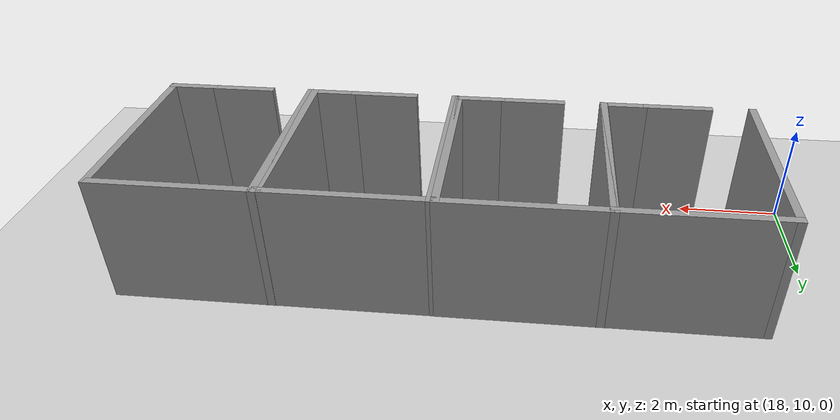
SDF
<sdf version="1.6">
 <world name="default">
  <model name="ground_plane">
   <static>1</static>
   <link name="link">
    <collision name="collision">
     <geometry><plane><normal>0 0 1</normal><size>100 100</size></plane></geometry>
     <surface><friction><ode><mu>100</mu><mu2>50</mu2></ode></friction></surface>
    </collision>
    <visual name="visual">
     <cast_shadows>0</cast_shadows>
     <geometry><plane><normal>0 0 1</normal><size>100 100</size></plane></geometry>
     <material>
      <script><uri>file://media/materials/scripts/gazebo.material</uri><name>Gazebo/Grey</name></script>
     </material>
    </visual>
   </link>
  </model>
  <model name="313-325">
   <link name="Wall_16">
    <pose>-1.44915 7.1e-05 0 0 0 -1.57088</pose>
    <visual name="Wall_16_Visual">
     <pose>0 0 1.25 0 -0 0</pose>
     <geometry><box><size>3.81 0.15 2.5</size></box></geometry>
     <material>
      <script><uri>file://media/materials/scripts/gazebo.material</uri><name>Gazebo/Grey</name></script>
      <ambient>1 1 1 1</ambient>
      <shader type="pixel"/>
     </material>
     <meta><layer>0</layer></meta>
    </visual>
    <collision name="Wall_16_Collision">
     <pose>0 0 1.25 0 -0 0</pose>
     <geometry><box><size>3.81 0.15 2.5</size></box></geometry>
     <surface>
      <friction>
       <ode><mu>1</mu><mu2>1</mu2><fdir1>0 0 0</fdir1><slip1>0</slip1><slip2>0</slip2></ode>
       <torsional>
        <coefficient>1</coefficient>
        <patch_radius>0</patch_radius>
        <surface_radius>0</surface_radius>
        <use_patch_radius>1</use_patch_radius>
        <ode><slip>0</slip></ode>
       </torsional>
      </friction>
      <bounce><restitution_coefficient>0</restitution_coefficient><threshold>1e+06</threshold></bounce>
      <contact>
       <collide_without_contact>0</collide_without_contact>
       <collide_without_contact_bitmask>1</collide_without_contact_bitmask>
       <collide_bitmask>1</collide_bitmask>
       <ode>
        <soft_cfm>0</soft_cfm>
        <soft_erp>0.2</soft_erp>
        <kp>1e+13</kp>
        <kd>1</kd>
        <max_vel>0.01</max_vel>
        <min_depth>0</min_depth>
       </ode>
       <bullet>
        <split_impulse>1</split_impulse>
        <split_impulse_penetration_threshold>-0.01</split_impulse_penetration_threshold>
        <soft_cfm>0</soft_cfm>
        <soft_erp>0.2</soft_erp>
        <kp>1e+13</kp>
        <kd>1</kd>
       </bullet>
      </contact>
     </surface>
    </collision>
   </link>
   <link name="Wall_18">
    <pose>1.449 -6.1e-05 0 0 -0 1.5708</pose>
    <visual name="Wall_18_Visual">
     <pose>0 0 1.25 0 -0 0</pose>
     <geometry><box><size>3.80974 0.15 2.5</size></box></geometry>
     <material>
      <script><uri>file://media/materials/scripts/gazebo.material</uri><name>Gazebo/Grey</name></script>
      <ambient>1 1 1 1</ambient>
      <shader type="pixel"/>
     </material>
     <meta><layer>0</layer></meta>
    </visual>
    <collision name="Wall_18_Collision">
     <pose>0 0 1.25 0 -0 0</pose>
     <geometry><box><size>3.80974 0.15 2.5</size></box></geometry>
     <surface>
      <friction>
       <ode><mu>1</mu><mu2>1</mu2><fdir1>0 0 0</fdir1><slip1>0</slip1><slip2>0</slip2></ode>
       <torsional>
        <coefficient>1</coefficient>
        <patch_radius>0</patch_radius>
        <surface_radius>0</surface_radius>
        <use_patch_radius>1</use_patch_radius>
        <ode><slip>0</slip></ode>
       </torsional>
      </friction>
      <bounce><restitution_coefficient>0</restitution_coefficient><threshold>1e+06</threshold></bounce>
      <contact>
       <collide_without_contact>0</collide_without_contact>
       <collide_without_contact_bitmask>1</collide_without_contact_bitmask>
       <collide_bitmask>1</collide_bitmask>
       <ode>
        <soft_cfm>0</soft_cfm>
        <soft_erp>0.2</soft_erp>
        <kp>1e+13</kp>
        <kd>1</kd>
        <max_vel>0.01</max_vel>
        <min_depth>0</min_depth>
       </ode>
       <bullet>
        <split_impulse>1</split_impulse>
        <split_impulse_penetration_threshold>-0.01</split_impulse_penetration_threshold>
        <soft_cfm>0</soft_cfm>
        <soft_erp>0.2</soft_erp>
        <kp>1e+13</kp>
        <kd>1</kd>
       </bullet>
      </contact>
     </surface>
    </collision>
   </link>
   <link name="Wall_19">
    <pose>2e-06 1.82994 0 0 -0 3.14159</pose>
    <visual name="Wall_19_Visual">
     <pose>0 0 1.25 0 -0 0</pose>
     <geometry><box><size>3.04862 0.15 2.5</size></box></geometry>
     <material>
      <script><uri>file://media/materials/scripts/gazebo.material</uri><name>Gazebo/Grey</name></script>
      <ambient>1 1 1 1</ambient>
      <shader type="pixel"/>
     </material>
     <meta><layer>0</layer></meta>
    </visual>
    <collision name="Wall_19_Collision">
     <pose>0 0 1.25 0 -0 0</pose>
     <geometry><box><size>3.04862 0.15 2.5</size></box></geometry>
     <surface>
      <friction>
       <ode><mu>1</mu><mu2>1</mu2><fdir1>0 0 0</fdir1><slip1>0</slip1><slip2>0</slip2></ode>
       <torsional>
        <coefficient>1</coefficient>
        <patch_radius>0</patch_radius>
        <surface_radius>0</surface_radius>
        <use_patch_radius>1</use_patch_radius>
        <ode><slip>0</slip></ode>
       </torsional>
      </friction>
      <bounce><restitution_coefficient>0</restitution_coefficient><threshold>1e+06</threshold></bounce>
      <contact>
       <collide_without_contact>0</collide_without_contact>
       <collide_without_contact_bitmask>1</collide_without_contact_bitmask>
       <collide_bitmask>1</collide_bitmask>
       <ode>
        <soft_cfm>0</soft_cfm>
        <soft_erp>0.2</soft_erp>
        <kp>1e+13</kp>
        <kd>1</kd>
        <max_vel>0.01</max_vel>
        <min_depth>0</min_depth>
       </ode>
       <bullet>
        <split_impulse>1</split_impulse>
        <split_impulse_penetration_threshold>-0.01</split_impulse_penetration_threshold>
        <soft_cfm>0</soft_cfm>
        <soft_erp>0.2</soft_erp>
        <kp>1e+13</kp>
        <kd>1</kd>
       </bullet>
      </contact>
     </surface>
    </collision>
   </link>
   <link name="Wall_22">
    <pose>-0.000153 -1.82993 0 0 0 -0.00022</pose>
    <visual name="Wall_22_Visual">
     <pose>0 0 1.25 0 -0 0</pose>
     <geometry><box><size>1.34831 0.15 2.5</size></box></geometry>
     <material>
      <script><uri>file://media/materials/scripts/gazebo.material</uri><name>Gazebo/Grey</name></script>
      <ambient>1 1 1 1</ambient>
      <shader type="pixel"/>
     </material>
     <meta><layer>0</layer></meta>
    </visual>
    <collision name="Wall_22_Collision">
     <pose>0 0 1.25 0 -0 0</pose>
     <geometry><box><size>1.34831 0.15 2.5</size></box></geometry>
     <surface>
      <friction>
       <ode><mu>1</mu><mu2>1</mu2><fdir1>0 0 0</fdir1><slip1>0</slip1><slip2>0</slip2></ode>
       <torsional>
        <coefficient>1</coefficient>
        <patch_radius>0</patch_radius>
        <surface_radius>0</surface_radius>
        <use_patch_radius>1</use_patch_radius>
        <ode><slip>0</slip></ode>
       </torsional>
      </friction>
      <bounce><restitution_coefficient>0</restitution_coefficient><threshold>1e+06</threshold></bounce>
      <contact>
       <collide_without_contact>0</collide_without_contact>
       <collide_without_contact_bitmask>1</collide_without_contact_bitmask>
       <collide_bitmask>1</collide_bitmask>
       <ode>
        <soft_cfm>0</soft_cfm>
        <soft_erp>0.2</soft_erp>
        <kp>1e+13</kp>
        <kd>1</kd>
        <max_vel>0.01</max_vel>
        <min_depth>0</min_depth>
       </ode>
       <bullet>
        <split_impulse>1</split_impulse>
        <split_impulse_penetration_threshold>-0.01</split_impulse_penetration_threshold>
        <soft_cfm>0</soft_cfm>
        <soft_erp>0.2</soft_erp>
        <kp>1e+13</kp>
        <kd>1</kd>
       </bullet>
      </contact>
     </surface>
    </collision>
   </link>
   <link name="Wall_23">
    <pose>1.024 -1.83006 0 0 -0 0</pose>
    <visual name="Wall_23_Visual">
     <pose>0 0 1.25 0 -0 0</pose>
     <geometry><box><size>1 0.15 2.5</size></box></geometry>
     <material>
      <script><uri>file://media/materials/scripts/gazebo.material</uri><name>Gazebo/Grey</name></script>
      <ambient>1 1 1 1</ambient>
      <shader type="pixel"/>
     </material>
     <meta><layer>0</layer></meta>
    </visual>
    <collision name="Wall_23_Collision">
     <pose>0 0 1.25 0 -0 0</pose>
     <geometry><box><size>1 0.15 2.5</size></box></geometry>
     <surface>
      <friction>
       <ode><mu>1</mu><mu2>1</mu2><fdir1>0 0 0</fdir1><slip1>0</slip1><slip2>0</slip2></ode>
       <torsional>
        <coefficient>1</coefficient>
        <patch_radius>0</patch_radius>
        <surface_radius>0</surface_radius>
        <use_patch_radius>1</use_patch_radius>
        <ode><slip>0</slip></ode>
       </torsional>
      </friction>
      <bounce><restitution_coefficient>0</restitution_coefficient><threshold>1e+06</threshold></bounce>
      <contact>
       <collide_without_contact>0</collide_without_contact>
       <collide_without_contact_bitmask>1</collide_without_contact_bitmask>
       <collide_bitmask>1</collide_bitmask>
       <ode>
        <soft_cfm>0</soft_cfm>
        <soft_erp>0.2</soft_erp>
        <kp>1e+13</kp>
        <kd>1</kd>
        <max_vel>0.01</max_vel>
        <min_depth>0</min_depth>
       </ode>
       <bullet>
        <split_impulse>1</split_impulse>
        <split_impulse_penetration_threshold>-0.01</split_impulse_penetration_threshold>
        <soft_cfm>0</soft_cfm>
        <soft_erp>0.2</soft_erp>
        <kp>1e+13</kp>
        <kd>1</kd>
       </bullet>
      </contact>
     </surface>
    </collision>
   </link>
   <static>1</static>
   <pose>29.269 11.9553 0 0 -0 0</pose>
  </model>
  <model name="313-325_0">
   <link name="Wall_16">
    <pose>-1.44915 7.1e-05 0 0 0 -1.57088</pose>
    <visual name="Wall_16_Visual">
     <pose>0 0 1.25 0 -0 0</pose>
     <geometry><box><size>3.81 0.15 2.5</size></box></geometry>
     <material>
      <script><uri>file://media/materials/scripts/gazebo.material</uri><name>Gazebo/Grey</name></script>
      <ambient>1 1 1 1</ambient>
      <shader type="pixel"/>
     </material>
     <meta><layer>0</layer></meta>
    </visual>
    <collision name="Wall_16_Collision">
     <pose>0 0 1.25 0 -0 0</pose>
     <geometry><box><size>3.81 0.15 2.5</size></box></geometry>
     <surface>
      <friction>
       <ode><mu>1</mu><mu2>1</mu2><fdir1>0 0 0</fdir1><slip1>0</slip1><slip2>0</slip2></ode>
       <torsional>
        <coefficient>1</coefficient>
        <patch_radius>0</patch_radius>
        <surface_radius>0</surface_radius>
        <use_patch_radius>1</use_patch_radius>
        <ode><slip>0</slip></ode>
       </torsional>
      </friction>
      <bounce><restitution_coefficient>0</restitution_coefficient><threshold>1e+06</threshold></bounce>
      <contact>
       <collide_without_contact>0</collide_without_contact>
       <collide_without_contact_bitmask>1</collide_without_contact_bitmask>
       <collide_bitmask>1</collide_bitmask>
       <ode>
        <soft_cfm>0</soft_cfm>
        <soft_erp>0.2</soft_erp>
        <kp>1e+13</kp>
        <kd>1</kd>
        <max_vel>0.01</max_vel>
        <min_depth>0</min_depth>
       </ode>
       <bullet>
        <split_impulse>1</split_impulse>
        <split_impulse_penetration_threshold>-0.01</split_impulse_penetration_threshold>
        <soft_cfm>0</soft_cfm>
        <soft_erp>0.2</soft_erp>
        <kp>1e+13</kp>
        <kd>1</kd>
       </bullet>
      </contact>
     </surface>
    </collision>
   </link>
   <link name="Wall_18">
    <pose>1.449 -6.1e-05 0 0 -0 1.5708</pose>
    <visual name="Wall_18_Visual">
     <pose>0 0 1.25 0 -0 0</pose>
     <geometry><box><size>3.80974 0.15 2.5</size></box></geometry>
     <material>
      <script><uri>file://media/materials/scripts/gazebo.material</uri><name>Gazebo/Grey</name></script>
      <ambient>1 1 1 1</ambient>
      <shader type="pixel"/>
     </material>
     <meta><layer>0</layer></meta>
    </visual>
    <collision name="Wall_18_Collision">
     <pose>0 0 1.25 0 -0 0</pose>
     <geometry><box><size>3.80974 0.15 2.5</size></box></geometry>
     <surface>
      <friction>
       <ode><mu>1</mu><mu2>1</mu2><fdir1>0 0 0</fdir1><slip1>0</slip1><slip2>0</slip2></ode>
       <torsional>
        <coefficient>1</coefficient>
        <patch_radius>0</patch_radius>
        <surface_radius>0</surface_radius>
        <use_patch_radius>1</use_patch_radius>
        <ode><slip>0</slip></ode>
       </torsional>
      </friction>
      <bounce><restitution_coefficient>0</restitution_coefficient><threshold>1e+06</threshold></bounce>
      <contact>
       <collide_without_contact>0</collide_without_contact>
       <collide_without_contact_bitmask>1</collide_without_contact_bitmask>
       <collide_bitmask>1</collide_bitmask>
       <ode>
        <soft_cfm>0</soft_cfm>
        <soft_erp>0.2</soft_erp>
        <kp>1e+13</kp>
        <kd>1</kd>
        <max_vel>0.01</max_vel>
        <min_depth>0</min_depth>
       </ode>
       <bullet>
        <split_impulse>1</split_impulse>
        <split_impulse_penetration_threshold>-0.01</split_impulse_penetration_threshold>
        <soft_cfm>0</soft_cfm>
        <soft_erp>0.2</soft_erp>
        <kp>1e+13</kp>
        <kd>1</kd>
       </bullet>
      </contact>
     </surface>
    </collision>
   </link>
   <link name="Wall_19">
    <pose>2e-06 1.82994 0 0 -0 3.14159</pose>
    <visual name="Wall_19_Visual">
     <pose>0 0 1.25 0 -0 0</pose>
     <geometry><box><size>3.04862 0.15 2.5</size></box></geometry>
     <material>
      <script><uri>file://media/materials/scripts/gazebo.material</uri><name>Gazebo/Grey</name></script>
      <ambient>1 1 1 1</ambient>
      <shader type="pixel"/>
     </material>
     <meta><layer>0</layer></meta>
    </visual>
    <collision name="Wall_19_Collision">
     <pose>0 0 1.25 0 -0 0</pose>
     <geometry><box><size>3.04862 0.15 2.5</size></box></geometry>
     <surface>
      <friction>
       <ode><mu>1</mu><mu2>1</mu2><fdir1>0 0 0</fdir1><slip1>0</slip1><slip2>0</slip2></ode>
       <torsional>
        <coefficient>1</coefficient>
        <patch_radius>0</patch_radius>
        <surface_radius>0</surface_radius>
        <use_patch_radius>1</use_patch_radius>
        <ode><slip>0</slip></ode>
       </torsional>
      </friction>
      <bounce><restitution_coefficient>0</restitution_coefficient><threshold>1e+06</threshold></bounce>
      <contact>
       <collide_without_contact>0</collide_without_contact>
       <collide_without_contact_bitmask>1</collide_without_contact_bitmask>
       <collide_bitmask>1</collide_bitmask>
       <ode>
        <soft_cfm>0</soft_cfm>
        <soft_erp>0.2</soft_erp>
        <kp>1e+13</kp>
        <kd>1</kd>
        <max_vel>0.01</max_vel>
        <min_depth>0</min_depth>
       </ode>
       <bullet>
        <split_impulse>1</split_impulse>
        <split_impulse_penetration_threshold>-0.01</split_impulse_penetration_threshold>
        <soft_cfm>0</soft_cfm>
        <soft_erp>0.2</soft_erp>
        <kp>1e+13</kp>
        <kd>1</kd>
       </bullet>
      </contact>
     </surface>
    </collision>
   </link>
   <link name="Wall_22">
    <pose>-0.000153 -1.82993 0 0 0 -0.00022</pose>
    <visual name="Wall_22_Visual">
     <pose>0 0 1.25 0 -0 0</pose>
     <geometry><box><size>1.34831 0.15 2.5</size></box></geometry>
     <material>
      <script><uri>file://media/materials/scripts/gazebo.material</uri><name>Gazebo/Grey</name></script>
      <ambient>1 1 1 1</ambient>
      <shader type="pixel"/>
     </material>
     <meta><layer>0</layer></meta>
    </visual>
    <collision name="Wall_22_Collision">
     <pose>0 0 1.25 0 -0 0</pose>
     <geometry><box><size>1.34831 0.15 2.5</size></box></geometry>
     <surface>
      <friction>
       <ode><mu>1</mu><mu2>1</mu2><fdir1>0 0 0</fdir1><slip1>0</slip1><slip2>0</slip2></ode>
       <torsional>
        <coefficient>1</coefficient>
        <patch_radius>0</patch_radius>
        <surface_radius>0</surface_radius>
        <use_patch_radius>1</use_patch_radius>
        <ode><slip>0</slip></ode>
       </torsional>
      </friction>
      <bounce><restitution_coefficient>0</restitution_coefficient><threshold>1e+06</threshold></bounce>
      <contact>
       <collide_without_contact>0</collide_without_contact>
       <collide_without_contact_bitmask>1</collide_without_contact_bitmask>
       <collide_bitmask>1</collide_bitmask>
       <ode>
        <soft_cfm>0</soft_cfm>
        <soft_erp>0.2</soft_erp>
        <kp>1e+13</kp>
        <kd>1</kd>
        <max_vel>0.01</max_vel>
        <min_depth>0</min_depth>
       </ode>
       <bullet>
        <split_impulse>1</split_impulse>
        <split_impulse_penetration_threshold>-0.01</split_impulse_penetration_threshold>
        <soft_cfm>0</soft_cfm>
        <soft_erp>0.2</soft_erp>
        <kp>1e+13</kp>
        <kd>1</kd>
       </bullet>
      </contact>
     </surface>
    </collision>
   </link>
   <link name="Wall_23">
    <pose>1.024 -1.83006 0 0 -0 0</pose>
    <visual name="Wall_23_Visual">
     <pose>0 0 1.25 0 -0 0</pose>
     <geometry><box><size>1 0.15 2.5</size></box></geometry>
     <material>
      <script><uri>file://media/materials/scripts/gazebo.material</uri><name>Gazebo/Grey</name></script>
      <ambient>1 1 1 1</ambient>
      <shader type="pixel"/>
     </material>
     <meta><layer>0</layer></meta>
    </visual>
    <collision name="Wall_23_Collision">
     <pose>0 0 1.25 0 -0 0</pose>
     <geometry><box><size>1 0.15 2.5</size></box></geometry>
     <surface>
      <friction>
       <ode><mu>1</mu><mu2>1</mu2><fdir1>0 0 0</fdir1><slip1>0</slip1><slip2>0</slip2></ode>
       <torsional>
        <coefficient>1</coefficient>
        <patch_radius>0</patch_radius>
        <surface_radius>0</surface_radius>
        <use_patch_radius>1</use_patch_radius>
        <ode><slip>0</slip></ode>
       </torsional>
      </friction>
      <bounce><restitution_coefficient>0</restitution_coefficient><threshold>1e+06</threshold></bounce>
      <contact>
       <collide_without_contact>0</collide_without_contact>
       <collide_without_contact_bitmask>1</collide_without_contact_bitmask>
       <collide_bitmask>1</collide_bitmask>
       <ode>
        <soft_cfm>0</soft_cfm>
        <soft_erp>0.2</soft_erp>
        <kp>1e+13</kp>
        <kd>1</kd>
        <max_vel>0.01</max_vel>
        <min_depth>0</min_depth>
       </ode>
       <bullet>
        <split_impulse>1</split_impulse>
        <split_impulse_penetration_threshold>-0.01</split_impulse_penetration_threshold>
        <soft_cfm>0</soft_cfm>
        <soft_erp>0.2</soft_erp>
        <kp>1e+13</kp>
        <kd>1</kd>
       </bullet>
      </contact>
     </surface>
    </collision>
   </link>
   <static>1</static>
   <pose>26.2881 11.95 0 0 -0 0</pose>
  </model>
  <model name="313-325_1">
   <link name="Wall_16">
    <pose>-1.44915 7.1e-05 0 0 0 -1.57088</pose>
    <visual name="Wall_16_Visual">
     <pose>0 0 1.25 0 -0 0</pose>
     <geometry><box><size>3.81 0.15 2.5</size></box></geometry>
     <material>
      <script><uri>file://media/materials/scripts/gazebo.material</uri><name>Gazebo/Grey</name></script>
      <ambient>1 1 1 1</ambient>
      <shader type="pixel"/>
     </material>
     <meta><layer>0</layer></meta>
    </visual>
    <collision name="Wall_16_Collision">
     <pose>0 0 1.25 0 -0 0</pose>
     <geometry><box><size>3.81 0.15 2.5</size></box></geometry>
     <surface>
      <friction>
       <ode><mu>1</mu><mu2>1</mu2><fdir1>0 0 0</fdir1><slip1>0</slip1><slip2>0</slip2></ode>
       <torsional>
        <coefficient>1</coefficient>
        <patch_radius>0</patch_radius>
        <surface_radius>0</surface_radius>
        <use_patch_radius>1</use_patch_radius>
        <ode><slip>0</slip></ode>
       </torsional>
      </friction>
      <bounce><restitution_coefficient>0</restitution_coefficient><threshold>1e+06</threshold></bounce>
      <contact>
       <collide_without_contact>0</collide_without_contact>
       <collide_without_contact_bitmask>1</collide_without_contact_bitmask>
       <collide_bitmask>1</collide_bitmask>
       <ode>
        <soft_cfm>0</soft_cfm>
        <soft_erp>0.2</soft_erp>
        <kp>1e+13</kp>
        <kd>1</kd>
        <max_vel>0.01</max_vel>
        <min_depth>0</min_depth>
       </ode>
       <bullet>
        <split_impulse>1</split_impulse>
        <split_impulse_penetration_threshold>-0.01</split_impulse_penetration_threshold>
        <soft_cfm>0</soft_cfm>
        <soft_erp>0.2</soft_erp>
        <kp>1e+13</kp>
        <kd>1</kd>
       </bullet>
      </contact>
     </surface>
    </collision>
   </link>
   <link name="Wall_18">
    <pose>1.449 -6.1e-05 0 0 -0 1.5708</pose>
    <visual name="Wall_18_Visual">
     <pose>0 0 1.25 0 -0 0</pose>
     <geometry><box><size>3.80974 0.15 2.5</size></box></geometry>
     <material>
      <script><uri>file://media/materials/scripts/gazebo.material</uri><name>Gazebo/Grey</name></script>
      <ambient>1 1 1 1</ambient>
      <shader type="pixel"/>
     </material>
     <meta><layer>0</layer></meta>
    </visual>
    <collision name="Wall_18_Collision">
     <pose>0 0 1.25 0 -0 0</pose>
     <geometry><box><size>3.80974 0.15 2.5</size></box></geometry>
     <surface>
      <friction>
       <ode><mu>1</mu><mu2>1</mu2><fdir1>0 0 0</fdir1><slip1>0</slip1><slip2>0</slip2></ode>
       <torsional>
        <coefficient>1</coefficient>
        <patch_radius>0</patch_radius>
        <surface_radius>0</surface_radius>
        <use_patch_radius>1</use_patch_radius>
        <ode><slip>0</slip></ode>
       </torsional>
      </friction>
      <bounce><restitution_coefficient>0</restitution_coefficient><threshold>1e+06</threshold></bounce>
      <contact>
       <collide_without_contact>0</collide_without_contact>
       <collide_without_contact_bitmask>1</collide_without_contact_bitmask>
       <collide_bitmask>1</collide_bitmask>
       <ode>
        <soft_cfm>0</soft_cfm>
        <soft_erp>0.2</soft_erp>
        <kp>1e+13</kp>
        <kd>1</kd>
        <max_vel>0.01</max_vel>
        <min_depth>0</min_depth>
       </ode>
       <bullet>
        <split_impulse>1</split_impulse>
        <split_impulse_penetration_threshold>-0.01</split_impulse_penetration_threshold>
        <soft_cfm>0</soft_cfm>
        <soft_erp>0.2</soft_erp>
        <kp>1e+13</kp>
        <kd>1</kd>
       </bullet>
      </contact>
     </surface>
    </collision>
   </link>
   <link name="Wall_19">
    <pose>2e-06 1.82994 0 0 -0 3.14159</pose>
    <visual name="Wall_19_Visual">
     <pose>0 0 1.25 0 -0 0</pose>
     <geometry><box><size>3.04862 0.15 2.5</size></box></geometry>
     <material>
      <script><uri>file://media/materials/scripts/gazebo.material</uri><name>Gazebo/Grey</name></script>
      <ambient>1 1 1 1</ambient>
      <shader type="pixel"/>
     </material>
     <meta><layer>0</layer></meta>
    </visual>
    <collision name="Wall_19_Collision">
     <pose>0 0 1.25 0 -0 0</pose>
     <geometry><box><size>3.04862 0.15 2.5</size></box></geometry>
     <surface>
      <friction>
       <ode><mu>1</mu><mu2>1</mu2><fdir1>0 0 0</fdir1><slip1>0</slip1><slip2>0</slip2></ode>
       <torsional>
        <coefficient>1</coefficient>
        <patch_radius>0</patch_radius>
        <surface_radius>0</surface_radius>
        <use_patch_radius>1</use_patch_radius>
        <ode><slip>0</slip></ode>
       </torsional>
      </friction>
      <bounce><restitution_coefficient>0</restitution_coefficient><threshold>1e+06</threshold></bounce>
      <contact>
       <collide_without_contact>0</collide_without_contact>
       <collide_without_contact_bitmask>1</collide_without_contact_bitmask>
       <collide_bitmask>1</collide_bitmask>
       <ode>
        <soft_cfm>0</soft_cfm>
        <soft_erp>0.2</soft_erp>
        <kp>1e+13</kp>
        <kd>1</kd>
        <max_vel>0.01</max_vel>
        <min_depth>0</min_depth>
       </ode>
       <bullet>
        <split_impulse>1</split_impulse>
        <split_impulse_penetration_threshold>-0.01</split_impulse_penetration_threshold>
        <soft_cfm>0</soft_cfm>
        <soft_erp>0.2</soft_erp>
        <kp>1e+13</kp>
        <kd>1</kd>
       </bullet>
      </contact>
     </surface>
    </collision>
   </link>
   <link name="Wall_22">
    <pose>-0.000153 -1.82993 0 0 0 -0.00022</pose>
    <visual name="Wall_22_Visual">
     <pose>0 0 1.25 0 -0 0</pose>
     <geometry><box><size>1.34831 0.15 2.5</size></box></geometry>
     <material>
      <script><uri>file://media/materials/scripts/gazebo.material</uri><name>Gazebo/Grey</name></script>
      <ambient>1 1 1 1</ambient>
      <shader type="pixel"/>
     </material>
     <meta><layer>0</layer></meta>
    </visual>
    <collision name="Wall_22_Collision">
     <pose>0 0 1.25 0 -0 0</pose>
     <geometry><box><size>1.34831 0.15 2.5</size></box></geometry>
     <surface>
      <friction>
       <ode><mu>1</mu><mu2>1</mu2><fdir1>0 0 0</fdir1><slip1>0</slip1><slip2>0</slip2></ode>
       <torsional>
        <coefficient>1</coefficient>
        <patch_radius>0</patch_radius>
        <surface_radius>0</surface_radius>
        <use_patch_radius>1</use_patch_radius>
        <ode><slip>0</slip></ode>
       </torsional>
      </friction>
      <bounce><restitution_coefficient>0</restitution_coefficient><threshold>1e+06</threshold></bounce>
      <contact>
       <collide_without_contact>0</collide_without_contact>
       <collide_without_contact_bitmask>1</collide_without_contact_bitmask>
       <collide_bitmask>1</collide_bitmask>
       <ode>
        <soft_cfm>0</soft_cfm>
        <soft_erp>0.2</soft_erp>
        <kp>1e+13</kp>
        <kd>1</kd>
        <max_vel>0.01</max_vel>
        <min_depth>0</min_depth>
       </ode>
       <bullet>
        <split_impulse>1</split_impulse>
        <split_impulse_penetration_threshold>-0.01</split_impulse_penetration_threshold>
        <soft_cfm>0</soft_cfm>
        <soft_erp>0.2</soft_erp>
        <kp>1e+13</kp>
        <kd>1</kd>
       </bullet>
      </contact>
     </surface>
    </collision>
   </link>
   <link name="Wall_23">
    <pose>1.024 -1.83006 0 0 -0 0</pose>
    <visual name="Wall_23_Visual">
     <pose>0 0 1.25 0 -0 0</pose>
     <geometry><box><size>1 0.15 2.5</size></box></geometry>
     <material>
      <script><uri>file://media/materials/scripts/gazebo.material</uri><name>Gazebo/Grey</name></script>
      <ambient>1 1 1 1</ambient>
      <shader type="pixel"/>
     </material>
     <meta><layer>0</layer></meta>
    </visual>
    <collision name="Wall_23_Collision">
     <pose>0 0 1.25 0 -0 0</pose>
     <geometry><box><size>1 0.15 2.5</size></box></geometry>
     <surface>
      <friction>
       <ode><mu>1</mu><mu2>1</mu2><fdir1>0 0 0</fdir1><slip1>0</slip1><slip2>0</slip2></ode>
       <torsional>
        <coefficient>1</coefficient>
        <patch_radius>0</patch_radius>
        <surface_radius>0</surface_radius>
        <use_patch_radius>1</use_patch_radius>
        <ode><slip>0</slip></ode>
       </torsional>
      </friction>
      <bounce><restitution_coefficient>0</restitution_coefficient><threshold>1e+06</threshold></bounce>
      <contact>
       <collide_without_contact>0</collide_without_contact>
       <collide_without_contact_bitmask>1</collide_without_contact_bitmask>
       <collide_bitmask>1</collide_bitmask>
       <ode>
        <soft_cfm>0</soft_cfm>
        <soft_erp>0.2</soft_erp>
        <kp>1e+13</kp>
        <kd>1</kd>
        <max_vel>0.01</max_vel>
        <min_depth>0</min_depth>
       </ode>
       <bullet>
        <split_impulse>1</split_impulse>
        <split_impulse_penetration_threshold>-0.01</split_impulse_penetration_threshold>
        <soft_cfm>0</soft_cfm>
        <soft_erp>0.2</soft_erp>
        <kp>1e+13</kp>
        <kd>1</kd>
       </bullet>
      </contact>
     </surface>
    </collision>
   </link>
   <static>1</static>
   <pose>23.3136 11.9552 0 0 -0 0</pose>
  </model>
  <model name="313-325_2">
   <link name="Wall_16">
    <pose>-1.44915 7.1e-05 0 0 0 -1.57088</pose>
    <visual name="Wall_16_Visual">
     <pose>0 0 1.25 0 -0 0</pose>
     <geometry><box><size>3.81 0.15 2.5</size></box></geometry>
     <material>
      <script><uri>file://media/materials/scripts/gazebo.material</uri><name>Gazebo/Grey</name></script>
      <ambient>1 1 1 1</ambient>
      <shader type="pixel"/>
     </material>
     <meta><layer>0</layer></meta>
    </visual>
    <collision name="Wall_16_Collision">
     <pose>0 0 1.25 0 -0 0</pose>
     <geometry><box><size>3.81 0.15 2.5</size></box></geometry>
     <surface>
      <friction>
       <ode><mu>1</mu><mu2>1</mu2><fdir1>0 0 0</fdir1><slip1>0</slip1><slip2>0</slip2></ode>
       <torsional>
        <coefficient>1</coefficient>
        <patch_radius>0</patch_radius>
        <surface_radius>0</surface_radius>
        <use_patch_radius>1</use_patch_radius>
        <ode><slip>0</slip></ode>
       </torsional>
      </friction>
      <bounce><restitution_coefficient>0</restitution_coefficient><threshold>1e+06</threshold></bounce>
      <contact>
       <collide_without_contact>0</collide_without_contact>
       <collide_without_contact_bitmask>1</collide_without_contact_bitmask>
       <collide_bitmask>1</collide_bitmask>
       <ode>
        <soft_cfm>0</soft_cfm>
        <soft_erp>0.2</soft_erp>
        <kp>1e+13</kp>
        <kd>1</kd>
        <max_vel>0.01</max_vel>
        <min_depth>0</min_depth>
       </ode>
       <bullet>
        <split_impulse>1</split_impulse>
        <split_impulse_penetration_threshold>-0.01</split_impulse_penetration_threshold>
        <soft_cfm>0</soft_cfm>
        <soft_erp>0.2</soft_erp>
        <kp>1e+13</kp>
        <kd>1</kd>
       </bullet>
      </contact>
     </surface>
    </collision>
   </link>
   <link name="Wall_18">
    <pose>1.449 -6.1e-05 0 0 -0 1.5708</pose>
    <visual name="Wall_18_Visual">
     <pose>0 0 1.25 0 -0 0</pose>
     <geometry><box><size>3.80974 0.15 2.5</size></box></geometry>
     <material>
      <script><uri>file://media/materials/scripts/gazebo.material</uri><name>Gazebo/Grey</name></script>
      <ambient>1 1 1 1</ambient>
      <shader type="pixel"/>
     </material>
     <meta><layer>0</layer></meta>
    </visual>
    <collision name="Wall_18_Collision">
     <pose>0 0 1.25 0 -0 0</pose>
     <geometry><box><size>3.80974 0.15 2.5</size></box></geometry>
     <surface>
      <friction>
       <ode><mu>1</mu><mu2>1</mu2><fdir1>0 0 0</fdir1><slip1>0</slip1><slip2>0</slip2></ode>
       <torsional>
        <coefficient>1</coefficient>
        <patch_radius>0</patch_radius>
        <surface_radius>0</surface_radius>
        <use_patch_radius>1</use_patch_radius>
        <ode><slip>0</slip></ode>
       </torsional>
      </friction>
      <bounce><restitution_coefficient>0</restitution_coefficient><threshold>1e+06</threshold></bounce>
      <contact>
       <collide_without_contact>0</collide_without_contact>
       <collide_without_contact_bitmask>1</collide_without_contact_bitmask>
       <collide_bitmask>1</collide_bitmask>
       <ode>
        <soft_cfm>0</soft_cfm>
        <soft_erp>0.2</soft_erp>
        <kp>1e+13</kp>
        <kd>1</kd>
        <max_vel>0.01</max_vel>
        <min_depth>0</min_depth>
       </ode>
       <bullet>
        <split_impulse>1</split_impulse>
        <split_impulse_penetration_threshold>-0.01</split_impulse_penetration_threshold>
        <soft_cfm>0</soft_cfm>
        <soft_erp>0.2</soft_erp>
        <kp>1e+13</kp>
        <kd>1</kd>
       </bullet>
      </contact>
     </surface>
    </collision>
   </link>
   <link name="Wall_19">
    <pose>2e-06 1.82994 0 0 -0 3.14159</pose>
    <visual name="Wall_19_Visual">
     <pose>0 0 1.25 0 -0 0</pose>
     <geometry><box><size>3.04862 0.15 2.5</size></box></geometry>
     <material>
      <script><uri>file://media/materials/scripts/gazebo.material</uri><name>Gazebo/Grey</name></script>
      <ambient>1 1 1 1</ambient>
      <shader type="pixel"/>
     </material>
     <meta><layer>0</layer></meta>
    </visual>
    <collision name="Wall_19_Collision">
     <pose>0 0 1.25 0 -0 0</pose>
     <geometry><box><size>3.04862 0.15 2.5</size></box></geometry>
     <surface>
      <friction>
       <ode><mu>1</mu><mu2>1</mu2><fdir1>0 0 0</fdir1><slip1>0</slip1><slip2>0</slip2></ode>
       <torsional>
        <coefficient>1</coefficient>
        <patch_radius>0</patch_radius>
        <surface_radius>0</surface_radius>
        <use_patch_radius>1</use_patch_radius>
        <ode><slip>0</slip></ode>
       </torsional>
      </friction>
      <bounce><restitution_coefficient>0</restitution_coefficient><threshold>1e+06</threshold></bounce>
      <contact>
       <collide_without_contact>0</collide_without_contact>
       <collide_without_contact_bitmask>1</collide_without_contact_bitmask>
       <collide_bitmask>1</collide_bitmask>
       <ode>
        <soft_cfm>0</soft_cfm>
        <soft_erp>0.2</soft_erp>
        <kp>1e+13</kp>
        <kd>1</kd>
        <max_vel>0.01</max_vel>
        <min_depth>0</min_depth>
       </ode>
       <bullet>
        <split_impulse>1</split_impulse>
        <split_impulse_penetration_threshold>-0.01</split_impulse_penetration_threshold>
        <soft_cfm>0</soft_cfm>
        <soft_erp>0.2</soft_erp>
        <kp>1e+13</kp>
        <kd>1</kd>
       </bullet>
      </contact>
     </surface>
    </collision>
   </link>
   <link name="Wall_22">
    <pose>-0.000153 -1.82993 0 0 0 -0.00022</pose>
    <visual name="Wall_22_Visual">
     <pose>0 0 1.25 0 -0 0</pose>
     <geometry><box><size>1.34831 0.15 2.5</size></box></geometry>
     <material>
      <script><uri>file://media/materials/scripts/gazebo.material</uri><name>Gazebo/Grey</name></script>
      <ambient>1 1 1 1</ambient>
      <shader type="pixel"/>
     </material>
     <meta><layer>0</layer></meta>
    </visual>
    <collision name="Wall_22_Collision">
     <pose>0 0 1.25 0 -0 0</pose>
     <geometry><box><size>1.34831 0.15 2.5</size></box></geometry>
     <surface>
      <friction>
       <ode><mu>1</mu><mu2>1</mu2><fdir1>0 0 0</fdir1><slip1>0</slip1><slip2>0</slip2></ode>
       <torsional>
        <coefficient>1</coefficient>
        <patch_radius>0</patch_radius>
        <surface_radius>0</surface_radius>
        <use_patch_radius>1</use_patch_radius>
        <ode><slip>0</slip></ode>
       </torsional>
      </friction>
      <bounce><restitution_coefficient>0</restitution_coefficient><threshold>1e+06</threshold></bounce>
      <contact>
       <collide_without_contact>0</collide_without_contact>
       <collide_without_contact_bitmask>1</collide_without_contact_bitmask>
       <collide_bitmask>1</collide_bitmask>
       <ode>
        <soft_cfm>0</soft_cfm>
        <soft_erp>0.2</soft_erp>
        <kp>1e+13</kp>
        <kd>1</kd>
        <max_vel>0.01</max_vel>
        <min_depth>0</min_depth>
       </ode>
       <bullet>
        <split_impulse>1</split_impulse>
        <split_impulse_penetration_threshold>-0.01</split_impulse_penetration_threshold>
        <soft_cfm>0</soft_cfm>
        <soft_erp>0.2</soft_erp>
        <kp>1e+13</kp>
        <kd>1</kd>
       </bullet>
      </contact>
     </surface>
    </collision>
   </link>
   <link name="Wall_23">
    <pose>1.024 -1.83006 0 0 -0 0</pose>
    <visual name="Wall_23_Visual">
     <pose>0 0 1.25 0 -0 0</pose>
     <geometry><box><size>1 0.15 2.5</size></box></geometry>
     <material>
      <script><uri>file://media/materials/scripts/gazebo.material</uri><name>Gazebo/Grey</name></script>
      <ambient>1 1 1 1</ambient>
      <shader type="pixel"/>
     </material>
     <meta><layer>0</layer></meta>
    </visual>
    <collision name="Wall_23_Collision">
     <pose>0 0 1.25 0 -0 0</pose>
     <geometry><box><size>1 0.15 2.5</size></box></geometry>
     <surface>
      <friction>
       <ode><mu>1</mu><mu2>1</mu2><fdir1>0 0 0</fdir1><slip1>0</slip1><slip2>0</slip2></ode>
       <torsional>
        <coefficient>1</coefficient>
        <patch_radius>0</patch_radius>
        <surface_radius>0</surface_radius>
        <use_patch_radius>1</use_patch_radius>
        <ode><slip>0</slip></ode>
       </torsional>
      </friction>
      <bounce><restitution_coefficient>0</restitution_coefficient><threshold>1e+06</threshold></bounce>
      <contact>
       <collide_without_contact>0</collide_without_contact>
       <collide_without_contact_bitmask>1</collide_without_contact_bitmask>
       <collide_bitmask>1</collide_bitmask>
       <ode>
        <soft_cfm>0</soft_cfm>
        <soft_erp>0.2</soft_erp>
        <kp>1e+13</kp>
        <kd>1</kd>
        <max_vel>0.01</max_vel>
        <min_depth>0</min_depth>
       </ode>
       <bullet>
        <split_impulse>1</split_impulse>
        <split_impulse_penetration_threshold>-0.01</split_impulse_penetration_threshold>
        <soft_cfm>0</soft_cfm>
        <soft_erp>0.2</soft_erp>
        <kp>1e+13</kp>
        <kd>1</kd>
       </bullet>
      </contact>
     </surface>
    </collision>
   </link>
   <static>1</static>
   <pose>20.4252 11.9516 0 0 -0 0</pose>
  </model>
 </world>
</sdf>
